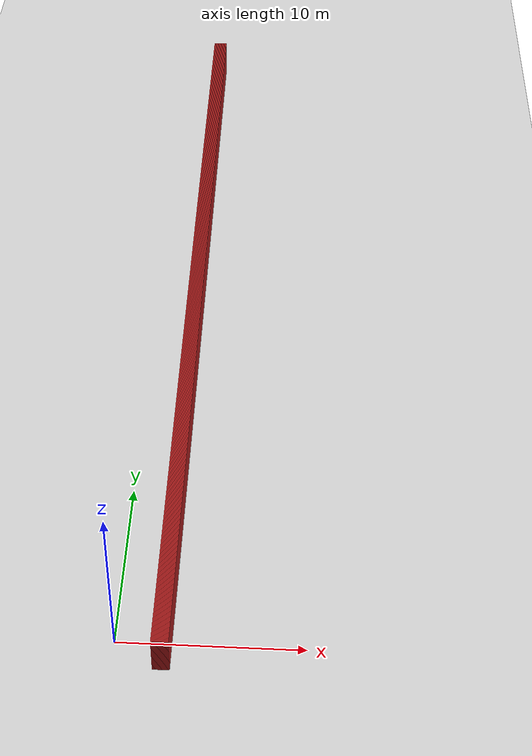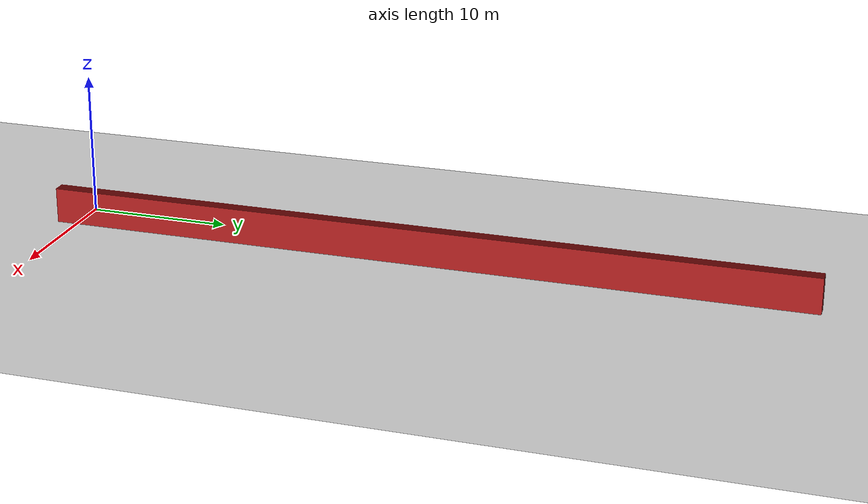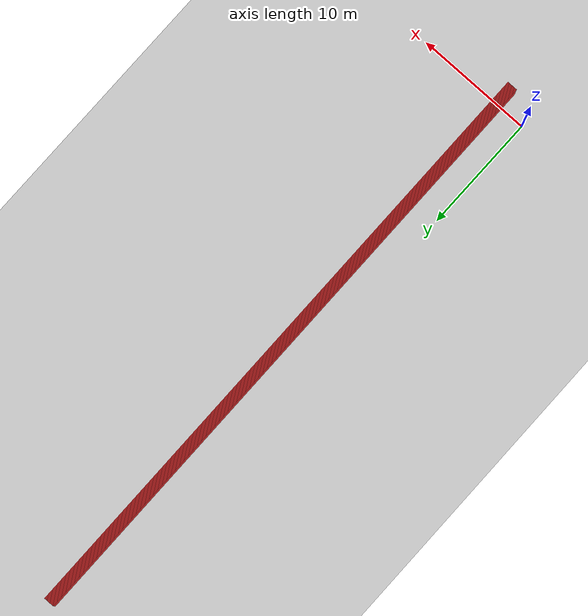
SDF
<sdf version="1.4">
 <world name="1_wall">
  <model name="ground_plane">
   <static>1</static>
   <link name="link">
    <collision name="collision">
     <geometry><plane><normal>0 0 1</normal><size>1000 1000</size></plane></geometry>
     <surface><friction><ode><mu>100</mu><mu2>50</mu2></ode></friction></surface>
    </collision>
    <visual name="visual">
     <cast_shadows>0</cast_shadows>
     <geometry><plane><normal>0 0 1</normal><size>10000 10000</size></plane></geometry>
     <material>
      <script><uri>file://media/materials/scripts/gazebo.material</uri><name>Gazebo/Grey</name></script>
     </material>
    </visual>
    <velocity_decay><linear>0</linear><angular>0</angular></velocity_decay>
   </link>
  </model>
  <model name="Wall_72">
   <static>1</static>
   <link name="Wall_72">
    <collision name="Wall_Collision_72">
     <geometry><box><size>53.65 0.05 2.5</size></box></geometry>
     <pose>0 0 1.25 0 -0 0</pose>
    </collision>
    <visual name="Wall_Visual_72">
     <pose>0 0 1.25 0 -0 0</pose>
     <geometry><box><size>53.65 0.05 2.5</size></box></geometry>
     <material>
      <script><uri>file://media/materials/scripts/gazebo.material</uri><name>Gazebo/Red</name></script>
     </material>
    </visual>
    <velocity_decay><linear>0</linear><angular>0</angular></velocity_decay>
    <pose>2.1 25.3 0 0 0 1.5707963267948966</pose>
   </link>
  </model>
  <model name="Wall_73">
   <static>1</static>
   <link name="Wall_73">
    <collision name="Wall_Collision_73">
     <geometry><box><size>53.65 0.05 2.5</size></box></geometry>
     <pose>0 0 1.25 0 -0 0</pose>
    </collision>
    <visual name="Wall_Visual_73">
     <pose>0 0 1.25 0 -0 0</pose>
     <geometry><box><size>53.65 0.05 2.5</size></box></geometry>
     <material>
      <script><uri>file://media/materials/scripts/gazebo.material</uri><name>Gazebo/Red</name></script>
     </material>
    </visual>
    <velocity_decay><linear>0</linear><angular>0</angular></velocity_decay>
    <pose>2.15 25.3 0 0 0 1.5707963267948966</pose>
   </link>
  </model>
  <model name="Wall_74">
   <static>1</static>
   <link name="Wall_74">
    <collision name="Wall_Collision_74">
     <geometry><box><size>53.65 0.05 2.5</size></box></geometry>
     <pose>0 0 1.25 0 -0 0</pose>
    </collision>
    <visual name="Wall_Visual_74">
     <pose>0 0 1.25 0 -0 0</pose>
     <geometry><box><size>53.65 0.05 2.5</size></box></geometry>
     <material>
      <script><uri>file://media/materials/scripts/gazebo.material</uri><name>Gazebo/Red</name></script>
     </material>
    </visual>
    <velocity_decay><linear>0</linear><angular>0</angular></velocity_decay>
    <pose>2.2 25.3 0 0 0 1.5707963267948966</pose>
   </link>
  </model>
  <model name="Wall_75">
   <static>1</static>
   <link name="Wall_75">
    <collision name="Wall_Collision_75">
     <geometry><box><size>53.65 0.05 2.5</size></box></geometry>
     <pose>0 0 1.25 0 -0 0</pose>
    </collision>
    <visual name="Wall_Visual_75">
     <pose>0 0 1.25 0 -0 0</pose>
     <geometry><box><size>53.65 0.05 2.5</size></box></geometry>
     <material>
      <script><uri>file://media/materials/scripts/gazebo.material</uri><name>Gazebo/Red</name></script>
     </material>
    </visual>
    <velocity_decay><linear>0</linear><angular>0</angular></velocity_decay>
    <pose>2.25 25.3 0 0 0 1.5707963267948966</pose>
   </link>
  </model>
  <model name="Wall_76">
   <static>1</static>
   <link name="Wall_76">
    <collision name="Wall_Collision_76">
     <geometry><box><size>53.65 0.05 2.5</size></box></geometry>
     <pose>0 0 1.25 0 -0 0</pose>
    </collision>
    <visual name="Wall_Visual_76">
     <pose>0 0 1.25 0 -0 0</pose>
     <geometry><box><size>53.65 0.05 2.5</size></box></geometry>
     <material>
      <script><uri>file://media/materials/scripts/gazebo.material</uri><name>Gazebo/Red</name></script>
     </material>
    </visual>
    <velocity_decay><linear>0</linear><angular>0</angular></velocity_decay>
    <pose>2.3 25.3 0 0 0 1.5707963267948966</pose>
   </link>
  </model>
  <model name="Wall_77">
   <static>1</static>
   <link name="Wall_77">
    <collision name="Wall_Collision_77">
     <geometry><box><size>53.65 0.05 2.5</size></box></geometry>
     <pose>0 0 1.25 0 -0 0</pose>
    </collision>
    <visual name="Wall_Visual_77">
     <pose>0 0 1.25 0 -0 0</pose>
     <geometry><box><size>53.65 0.05 2.5</size></box></geometry>
     <material>
      <script><uri>file://media/materials/scripts/gazebo.material</uri><name>Gazebo/Red</name></script>
     </material>
    </visual>
    <velocity_decay><linear>0</linear><angular>0</angular></velocity_decay>
    <pose>2.35 25.3 0 0 0 1.5707963267948966</pose>
   </link>
  </model>
  <model name="Wall_78">
   <static>1</static>
   <link name="Wall_78">
    <collision name="Wall_Collision_78">
     <geometry><box><size>53.65 0.05 2.5</size></box></geometry>
     <pose>0 0 1.25 0 -0 0</pose>
    </collision>
    <visual name="Wall_Visual_78">
     <pose>0 0 1.25 0 -0 0</pose>
     <geometry><box><size>53.65 0.05 2.5</size></box></geometry>
     <material>
      <script><uri>file://media/materials/scripts/gazebo.material</uri><name>Gazebo/Red</name></script>
     </material>
    </visual>
    <velocity_decay><linear>0</linear><angular>0</angular></velocity_decay>
    <pose>2.4 25.3 0 0 0 1.5707963267948966</pose>
   </link>
  </model>
  <model name="Wall_79">
   <static>1</static>
   <link name="Wall_79">
    <collision name="Wall_Collision_79">
     <geometry><box><size>53.65 0.05 2.5</size></box></geometry>
     <pose>0 0 1.25 0 -0 0</pose>
    </collision>
    <visual name="Wall_Visual_79">
     <pose>0 0 1.25 0 -0 0</pose>
     <geometry><box><size>53.65 0.05 2.5</size></box></geometry>
     <material>
      <script><uri>file://media/materials/scripts/gazebo.material</uri><name>Gazebo/Red</name></script>
     </material>
    </visual>
    <velocity_decay><linear>0</linear><angular>0</angular></velocity_decay>
    <pose>2.45 25.3 0 0 0 1.5707963267948966</pose>
   </link>
  </model>
  <model name="Wall_80">
   <static>1</static>
   <link name="Wall_80">
    <collision name="Wall_Collision_80">
     <geometry><box><size>53.65 0.05 2.5</size></box></geometry>
     <pose>0 0 1.25 0 -0 0</pose>
    </collision>
    <visual name="Wall_Visual_80">
     <pose>0 0 1.25 0 -0 0</pose>
     <geometry><box><size>53.65 0.05 2.5</size></box></geometry>
     <material>
      <script><uri>file://media/materials/scripts/gazebo.material</uri><name>Gazebo/Red</name></script>
     </material>
    </visual>
    <velocity_decay><linear>0</linear><angular>0</angular></velocity_decay>
    <pose>2.5 25.3 0 0 0 1.5707963267948966</pose>
   </link>
  </model>
  <model name="Wall_81">
   <static>1</static>
   <link name="Wall_81">
    <collision name="Wall_Collision_81">
     <geometry><box><size>53.65 0.05 2.5</size></box></geometry>
     <pose>0 0 1.25 0 -0 0</pose>
    </collision>
    <visual name="Wall_Visual_81">
     <pose>0 0 1.25 0 -0 0</pose>
     <geometry><box><size>53.65 0.05 2.5</size></box></geometry>
     <material>
      <script><uri>file://media/materials/scripts/gazebo.material</uri><name>Gazebo/Red</name></script>
     </material>
    </visual>
    <velocity_decay><linear>0</linear><angular>0</angular></velocity_decay>
    <pose>2.55 25.3 0 0 0 1.5707963267948966</pose>
   </link>
  </model>
  <model name="Wall_82">
   <static>1</static>
   <link name="Wall_82">
    <collision name="Wall_Collision_82">
     <geometry><box><size>53.65 0.05 2.5</size></box></geometry>
     <pose>0 0 1.25 0 -0 0</pose>
    </collision>
    <visual name="Wall_Visual_82">
     <pose>0 0 1.25 0 -0 0</pose>
     <geometry><box><size>53.65 0.05 2.5</size></box></geometry>
     <material>
      <script><uri>file://media/materials/scripts/gazebo.material</uri><name>Gazebo/Red</name></script>
     </material>
    </visual>
    <velocity_decay><linear>0</linear><angular>0</angular></velocity_decay>
    <pose>2.6 25.3 0 0 0 1.5707963267948966</pose>
   </link>
  </model>
  <model name="Wall_83">
   <static>1</static>
   <link name="Wall_83">
    <collision name="Wall_Collision_83">
     <geometry><box><size>53.65 0.05 2.5</size></box></geometry>
     <pose>0 0 1.25 0 -0 0</pose>
    </collision>
    <visual name="Wall_Visual_83">
     <pose>0 0 1.25 0 -0 0</pose>
     <geometry><box><size>53.65 0.05 2.5</size></box></geometry>
     <material>
      <script><uri>file://media/materials/scripts/gazebo.material</uri><name>Gazebo/Red</name></script>
     </material>
    </visual>
    <velocity_decay><linear>0</linear><angular>0</angular></velocity_decay>
    <pose>2.65 25.3 0 0 0 1.5707963267948966</pose>
   </link>
  </model>
  <model name="Wall_84">
   <static>1</static>
   <link name="Wall_84">
    <collision name="Wall_Collision_84">
     <geometry><box><size>53.65 0.05 2.5</size></box></geometry>
     <pose>0 0 1.25 0 -0 0</pose>
    </collision>
    <visual name="Wall_Visual_84">
     <pose>0 0 1.25 0 -0 0</pose>
     <geometry><box><size>53.65 0.05 2.5</size></box></geometry>
     <material>
      <script><uri>file://media/materials/scripts/gazebo.material</uri><name>Gazebo/Red</name></script>
     </material>
    </visual>
    <velocity_decay><linear>0</linear><angular>0</angular></velocity_decay>
    <pose>2.7 25.3 0 0 0 1.5707963267948966</pose>
   </link>
  </model>
  <model name="Wall_85">
   <static>1</static>
   <link name="Wall_85">
    <collision name="Wall_Collision_85">
     <geometry><box><size>53.65 0.05 2.5</size></box></geometry>
     <pose>0 0 1.25 0 -0 0</pose>
    </collision>
    <visual name="Wall_Visual_85">
     <pose>0 0 1.25 0 -0 0</pose>
     <geometry><box><size>53.65 0.05 2.5</size></box></geometry>
     <material>
      <script><uri>file://media/materials/scripts/gazebo.material</uri><name>Gazebo/Red</name></script>
     </material>
    </visual>
    <velocity_decay><linear>0</linear><angular>0</angular></velocity_decay>
    <pose>2.75 25.3 0 0 0 1.5707963267948966</pose>
   </link>
  </model>
  <model name="Wall_86">
   <static>1</static>
   <link name="Wall_86">
    <collision name="Wall_Collision_86">
     <geometry><box><size>53.65 0.05 2.5</size></box></geometry>
     <pose>0 0 1.25 0 -0 0</pose>
    </collision>
    <visual name="Wall_Visual_86">
     <pose>0 0 1.25 0 -0 0</pose>
     <geometry><box><size>53.65 0.05 2.5</size></box></geometry>
     <material>
      <script><uri>file://media/materials/scripts/gazebo.material</uri><name>Gazebo/Red</name></script>
     </material>
    </visual>
    <velocity_decay><linear>0</linear><angular>0</angular></velocity_decay>
    <pose>2.8 25.3 0 0 0 1.5707963267948966</pose>
   </link>
  </model>
  <model name="Wall_87">
   <static>1</static>
   <link name="Wall_87">
    <collision name="Wall_Collision_87">
     <geometry><box><size>53.65 0.05 2.5</size></box></geometry>
     <pose>0 0 1.25 0 -0 0</pose>
    </collision>
    <visual name="Wall_Visual_87">
     <pose>0 0 1.25 0 -0 0</pose>
     <geometry><box><size>53.65 0.05 2.5</size></box></geometry>
     <material>
      <script><uri>file://media/materials/scripts/gazebo.material</uri><name>Gazebo/Red</name></script>
     </material>
    </visual>
    <velocity_decay><linear>0</linear><angular>0</angular></velocity_decay>
    <pose>2.85 25.3 0 0 0 1.5707963267948966</pose>
   </link>
  </model>
  <model name="Wall_88">
   <static>1</static>
   <link name="Wall_88">
    <collision name="Wall_Collision_88">
     <geometry><box><size>53.65 0.05 2.5</size></box></geometry>
     <pose>0 0 1.25 0 -0 0</pose>
    </collision>
    <visual name="Wall_Visual_88">
     <pose>0 0 1.25 0 -0 0</pose>
     <geometry><box><size>53.65 0.05 2.5</size></box></geometry>
     <material>
      <script><uri>file://media/materials/scripts/gazebo.material</uri><name>Gazebo/Red</name></script>
     </material>
    </visual>
    <velocity_decay><linear>0</linear><angular>0</angular></velocity_decay>
    <pose>2.9 25.3 0 0 0 1.5707963267948966</pose>
   </link>
  </model>
  <model name="Wall_89">
   <static>1</static>
   <link name="Wall_89">
    <collision name="Wall_Collision_89">
     <geometry><box><size>53.65 0.05 2.5</size></box></geometry>
     <pose>0 0 1.25 0 -0 0</pose>
    </collision>
    <visual name="Wall_Visual_89">
     <pose>0 0 1.25 0 -0 0</pose>
     <geometry><box><size>53.65 0.05 2.5</size></box></geometry>
     <material>
      <script><uri>file://media/materials/scripts/gazebo.material</uri><name>Gazebo/Red</name></script>
     </material>
    </visual>
    <velocity_decay><linear>0</linear><angular>0</angular></velocity_decay>
    <pose>2.95 25.3 0 0 0 1.5707963267948966</pose>
   </link>
  </model>
 </world>
</sdf>
